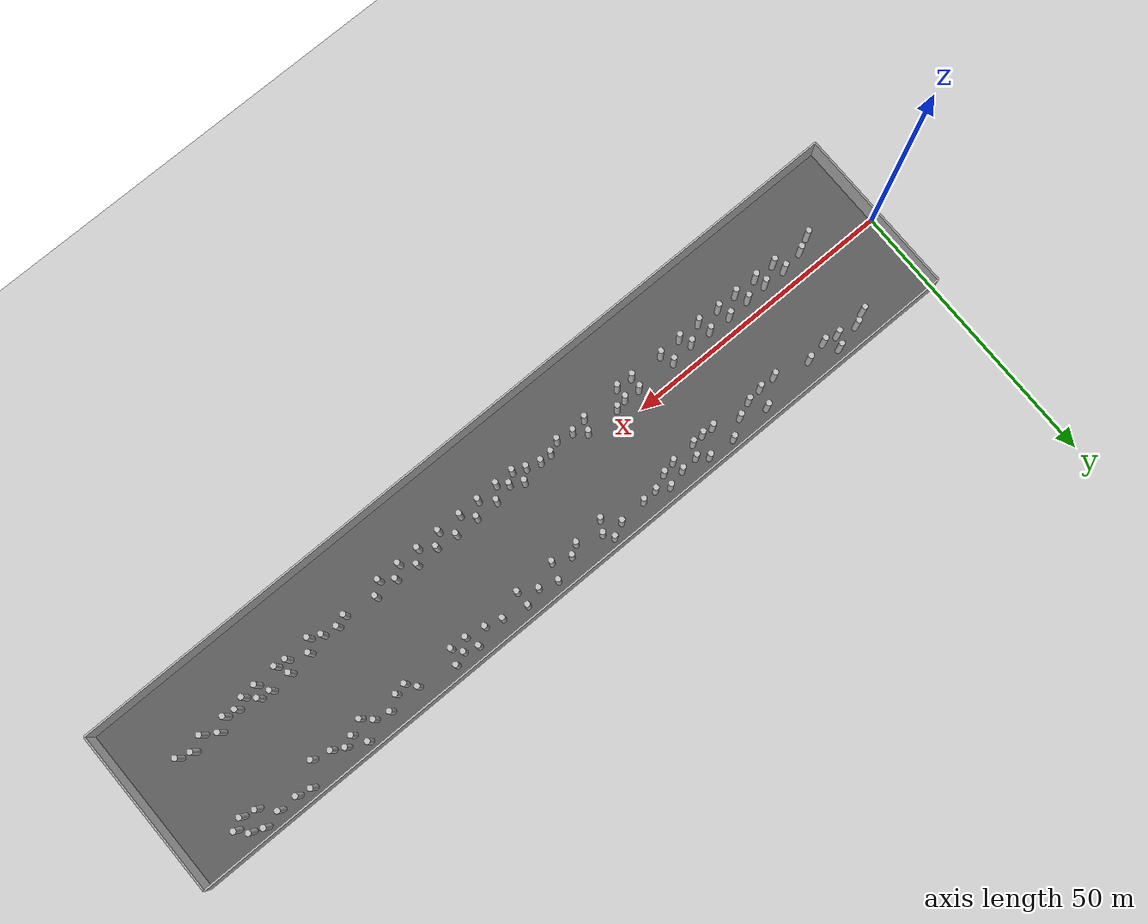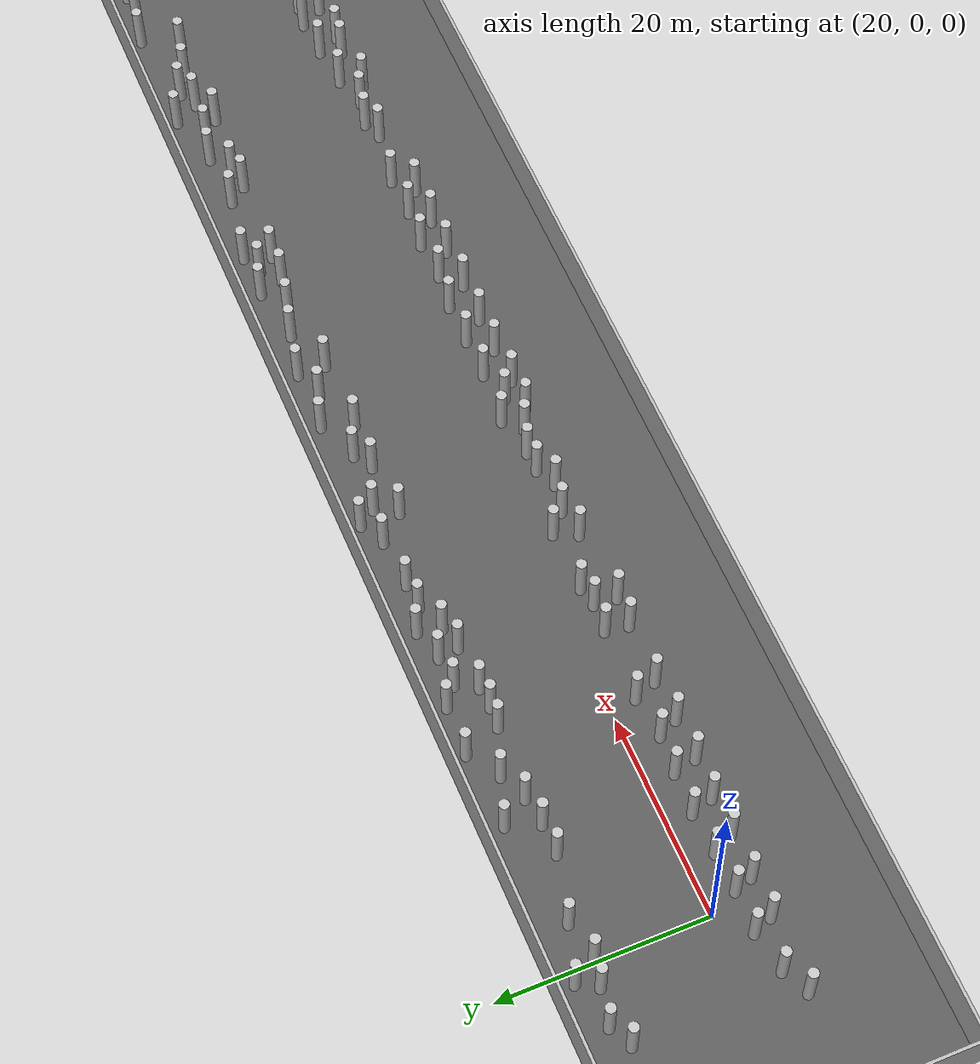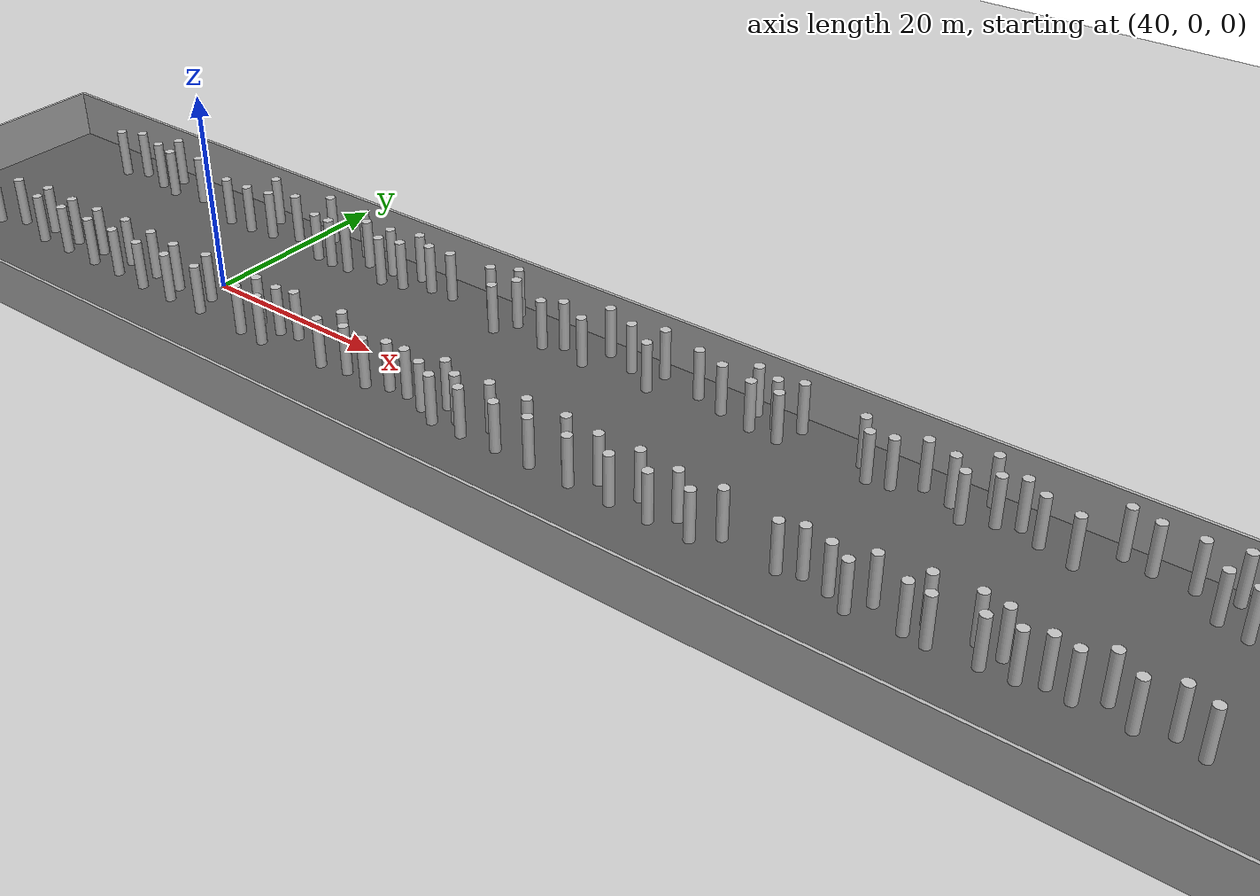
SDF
<?xml version="1.0" ?>
<sdf version="1.5">
  <world name="default">
    <plugin name="gazebo_ros_state" filename="libgazebo_ros_state.so">
      <ros>
        <namespace>/gazebo</namespace>
      </ros>
      <update_rate>20.0</update_rate>
    </plugin>

    <include><uri>model://sun</uri></include>
    <include><uri>model://ground_plane</uri></include>

    <model name="corridor_floor">
      <static>true</static>
      <pose>75 0 0.01 0 0 0</pose>
      <link name="link">
        <collision name="collision">
          <geometry><box><size>150 30 0.02</size></box></geometry>
        </collision>
        <visual name="visual">
          <geometry><box><size>150 30 0.02</size></box></geometry>
          <material>
            <ambient>0.25 0.25 0.25 1</ambient>
            <diffuse>0.35 0.35 0.35 1</diffuse>
          </material>
        </visual>
      </link>
    </model>

    <physics name="default_physics" default="0" type="ode">
      <gravity>0 0 -9.8066</gravity>
      <ode>
        <solver>
          <type>quick</type>
          <iters>10</iters>
          <sor>1.3</sor>
          <use_dynamic_moi_rescaling>0</use_dynamic_moi_rescaling>
        </solver>
        <constraints>
          <cfm>0</cfm>
          <erp>0.2</erp>
          <contact_max_correcting_vel>100</contact_max_correcting_vel>
          <contact_surface_layer>0.001</contact_surface_layer>
        </constraints>
      </ode>
      <max_step_size>0.004</max_step_size>
      <real_time_factor>1</real_time_factor>
      <real_time_update_rate>250</real_time_update_rate>
      <magnetic_field>6.0e-6 2.3e-5 -4.2e-5</magnetic_field>
    </physics>

    <model name="left_wall">
      <static>true</static>
      <pose>75 15.15 2.5 0 0 0</pose>
      <link name="link">
        <collision name="collision">
          <geometry><box><size>150 0.3 5</size></box></geometry>
        </collision>
        <visual name="visual">
          <geometry><box><size>150 0.3 5</size></box></geometry>
        </visual>
      </link>
    </model>

    <model name="right_wall">
      <static>true</static>
      <pose>75 -15.15 2.5 0 0 0</pose>
      <link name="link">
        <collision name="collision">
          <geometry><box><size>150 0.3 5</size></box></geometry>
        </collision>
        <visual name="visual">
          <geometry><box><size>150 0.3 5</size></box></geometry>
        </visual>
      </link>
    </model>

    <model name="start_wall">
      <static>true</static>
      <pose>0 0 2.5 0 0 0</pose>
      <link name="link">
        <collision name="collision">
          <geometry><box><size>0.3 30.3 5</size></box></geometry>
        </collision>
        <visual name="visual">
          <geometry><box><size>0.3 30.3 5</size></box></geometry>
        </visual>
      </link>
    </model>

    <model name="end_wall">
      <static>true</static>
      <pose>150 0 2.5 0 0 0</pose>
      <link name="link">
        <collision name="collision">
          <geometry><box><size>0.3 30.3 5</size></box></geometry>
        </collision>
        <visual name="visual">
          <geometry><box><size>0.3 30.3 5</size></box></geometry>
        </visual>
      </link>
    </model>

    <include><name>cylinder_000</name><uri>model://cylinder_r05_h5</uri><pose>17.895 -4.537 2.5 0 0 0</pose></include>
    <include><name>cylinder_001</name><uri>model://cylinder_r05_h5</uri><pose>17.145 -2.654 2.5 0 0 0</pose></include>
    <include><name>cylinder_002</name><uri>model://cylinder_r05_h5</uri><pose>21.822 -4.557 2.5 0 0 0</pose></include>
    <include><name>cylinder_003</name><uri>model://cylinder_r05_h5</uri><pose>21.213 -2.785 2.5 0 0 0</pose></include>
    <include><name>cylinder_004</name><uri>model://cylinder_r05_h5</uri><pose>26.027 -4.610 2.5 0 0 0</pose></include>
    <include><name>cylinder_005</name><uri>model://cylinder_r05_h5</uri><pose>25.065 -2.659 2.5 0 0 0</pose></include>
    <include><name>cylinder_006</name><uri>model://cylinder_r05_h5</uri><pose>29.804 -4.567 2.5 0 0 0</pose></include>
    <include><name>cylinder_007</name><uri>model://cylinder_r05_h5</uri><pose>29.143 -2.410 2.5 0 0 0</pose></include>
    <include><name>cylinder_008</name><uri>model://cylinder_r05_h5</uri><pose>33.780 -4.840 2.5 0 0 0</pose></include>
    <include><name>cylinder_009</name><uri>model://cylinder_r05_h5</uri><pose>33.205 -2.584 2.5 0 0 0</pose></include>
    <include><name>cylinder_010</name><uri>model://cylinder_r05_h5</uri><pose>37.872 -4.824 2.5 0 0 0</pose></include>
    <include><name>cylinder_011</name><uri>model://cylinder_r05_h5</uri><pose>36.935 -2.910 2.5 0 0 0</pose></include>
    <include><name>cylinder_012</name><uri>model://cylinder_r05_h5</uri><pose>41.989 -4.655 2.5 0 0 0</pose></include>
    <include><name>cylinder_013</name><uri>model://cylinder_r05_h5</uri><pose>41.111 -2.421 2.5 0 0 0</pose></include>
    <include><name>cylinder_014</name><uri>model://cylinder_r05_h5</uri><pose>70.580 -4.267 2.5 0 0 0</pose></include>
    <include><name>cylinder_015</name><uri>model://cylinder_r05_h5</uri><pose>53.136 -2.348 2.5 0 0 0</pose></include>
    <include><name>cylinder_016</name><uri>model://cylinder_r05_h5</uri><pose>61.132 -3.962 2.5 0 0 0</pose></include>
    <include><name>cylinder_017</name><uri>model://cylinder_r05_h5</uri><pose>48.306 -2.595 2.5 0 0 0</pose></include>
    <include><name>cylinder_018</name><uri>model://cylinder_r05_h5</uri><pose>59.259 -2.286 2.5 0 0 0</pose></include>
    <include><name>cylinder_019</name><uri>model://cylinder_r05_h5</uri><pose>63.992 -4.539 2.5 0 0 0</pose></include>
    <include><name>cylinder_020</name><uri>model://cylinder_r05_h5</uri><pose>47.991 -4.861 2.5 0 0 0</pose></include>
    <include><name>cylinder_021</name><uri>model://cylinder_r05_h5</uri><pose>66.068 -3.572 2.5 0 0 0</pose></include>
    <include><name>cylinder_022</name><uri>model://cylinder_r05_h5</uri><pose>68.156 -3.505 2.5 0 0 0</pose></include>
    <include><name>cylinder_023</name><uri>model://cylinder_r05_h5</uri><pose>72.230 -2.656 2.5 0 0 0</pose></include>
    <include><name>cylinder_024</name><uri>model://cylinder_r05_h5</uri><pose>74.393 -3.881 2.5 0 0 0</pose></include>
    <include><name>cylinder_025</name><uri>model://cylinder_r05_h5</uri><pose>50.962 -4.999 2.5 0 0 0</pose></include>
    <include><name>cylinder_026</name><uri>model://cylinder_r05_h5</uri><pose>72.676 -5.254 2.5 0 0 0</pose></include>
    <include><name>cylinder_027</name><uri>model://cylinder_r05_h5</uri><pose>51.145 -2.781 2.5 0 0 0</pose></include>
    <include><name>cylinder_028</name><uri>model://cylinder_r05_h5</uri><pose>58.283 -4.475 2.5 0 0 0</pose></include>
    <include><name>cylinder_029</name><uri>model://cylinder_r05_h5</uri><pose>77.649 -3.089 2.5 0 0 0</pose></include>
    <include><name>cylinder_030</name><uri>model://cylinder_r05_h5</uri><pose>76.008 -5.255 2.5 0 0 0</pose></include>
    <include><name>cylinder_031</name><uri>model://cylinder_r05_h5</uri><pose>81.764 -3.055 2.5 0 0 0</pose></include>
    <include><name>cylinder_032</name><uri>model://cylinder_r05_h5</uri><pose>79.832 -5.113 2.5 0 0 0</pose></include>
    <include><name>cylinder_033</name><uri>model://cylinder_r05_h5</uri><pose>85.974 -3.042 2.5 0 0 0</pose></include>
    <include><name>cylinder_034</name><uri>model://cylinder_r05_h5</uri><pose>83.568 -5.138 2.5 0 0 0</pose></include>
    <include><name>cylinder_035</name><uri>model://cylinder_r05_h5</uri><pose>89.677 -3.476 2.5 0 0 0</pose></include>
    <include><name>cylinder_036</name><uri>model://cylinder_r05_h5</uri><pose>87.816 -5.248 2.5 0 0 0</pose></include>
    <include><name>cylinder_037</name><uri>model://cylinder_r05_h5</uri><pose>93.733 -3.255 2.5 0 0 0</pose></include>
    <include><name>cylinder_038</name><uri>model://cylinder_r05_h5</uri><pose>92.085 -5.245 2.5 0 0 0</pose></include>
    <include><name>cylinder_039</name><uri>model://cylinder_r05_h5</uri><pose>97.762 -3.622 2.5 0 0 0</pose></include>
    <include><name>cylinder_040</name><uri>model://cylinder_r05_h5</uri><pose>95.946 -5.238 2.5 0 0 0</pose></include>
    <include><name>cylinder_041</name><uri>model://cylinder_r05_h5</uri><pose>101.938 -3.468 2.5 0 0 0</pose></include>
    <include><name>cylinder_042</name><uri>model://cylinder_r05_h5</uri><pose>99.994 -5.200 2.5 0 0 0</pose></include>
    <include><name>cylinder_043</name><uri>model://cylinder_r05_h5</uri><pose>127.663 -4.450 2.5 0 0 0</pose></include>
    <include><name>cylinder_044</name><uri>model://cylinder_r05_h5</uri><pose>112.106 -4.182 2.5 0 0 0</pose></include>
    <include><name>cylinder_045</name><uri>model://cylinder_r05_h5</uri><pose>109.509 -3.647 2.5 0 0 0</pose></include>
    <include><name>cylinder_046</name><uri>model://cylinder_r05_h5</uri><pose>119.729 -2.760 2.5 0 0 0</pose></include>
    <include><name>cylinder_047</name><uri>model://cylinder_r05_h5</uri><pose>123.668 -2.477 2.5 0 0 0</pose></include>
    <include><name>cylinder_048</name><uri>model://cylinder_r05_h5</uri><pose>118.810 -4.735 2.5 0 0 0</pose></include>
    <include><name>cylinder_049</name><uri>model://cylinder_r05_h5</uri><pose>107.553 -4.378 2.5 0 0 0</pose></include>
    <include><name>cylinder_050</name><uri>model://cylinder_r05_h5</uri><pose>115.461 -3.237 2.5 0 0 0</pose></include>
    <include><name>cylinder_051</name><uri>model://cylinder_r05_h5</uri><pose>124.953 -4.686 2.5 0 0 0</pose></include>
    <include><name>cylinder_052</name><uri>model://cylinder_r05_h5</uri><pose>133.822 -2.524 2.5 0 0 0</pose></include>
    <include><name>cylinder_053</name><uri>model://cylinder_r05_h5</uri><pose>131.721 -3.971 2.5 0 0 0</pose></include>
    <include><name>cylinder_054</name><uri>model://cylinder_r05_h5</uri><pose>120.821 -4.967 2.5 0 0 0</pose></include>
    <include><name>cylinder_055</name><uri>model://cylinder_r05_h5</uri><pose>125.908 -2.806 2.5 0 0 0</pose></include>
    <include><name>cylinder_056</name><uri>model://cylinder_r05_h5</uri><pose>114.126 -5.206 2.5 0 0 0</pose></include>
    <include><name>cylinder_057</name><uri>model://cylinder_r05_h5</uri><pose>129.617 -3.632 2.5 0 0 0</pose></include>
    <include><name>cylinder_058</name><uri>model://cylinder_r05_h5</uri><pose>13.149 -3.324 2.5 0 0 0</pose></include>
    <include><name>cylinder_059</name><uri>model://cylinder_r05_h5</uri><pose>10.572 -4.552 2.5 0 0 0</pose></include>
    <include><name>cylinder_060</name><uri>model://cylinder_r05_h5</uri><pose>136.252 -4.051 2.5 0 0 0</pose></include>
    <include><name>cylinder_061</name><uri>model://cylinder_r05_h5</uri><pose>141.291 -3.615 2.5 0 0 0</pose></include>
    <include><name>cylinder_062</name><uri>model://cylinder_r05_h5</uri><pose>138.860 -2.832 2.5 0 0 0</pose></include>
    <include><name>cylinder_063</name><uri>model://cylinder_r05_h5</uri><pose>54.206 10.651 2.5 0 0 0</pose></include>
    <include><name>cylinder_064</name><uri>model://cylinder_r05_h5</uri><pose>137.287 13.494 2.5 0 0 0</pose></include>
    <include><name>cylinder_065</name><uri>model://cylinder_r05_h5</uri><pose>118.284 11.068 2.5 0 0 0</pose></include>
    <include><name>cylinder_066</name><uri>model://cylinder_r05_h5</uri><pose>91.735 11.239 2.5 0 0 0</pose></include>
    <include><name>cylinder_067</name><uri>model://cylinder_r05_h5</uri><pose>51.570 12.068 2.5 0 0 0</pose></include>
    <include><name>cylinder_068</name><uri>model://cylinder_r05_h5</uri><pose>128.035 13.397 2.5 0 0 0</pose></include>
    <include><name>cylinder_069</name><uri>model://cylinder_r05_h5</uri><pose>17.741 11.249 2.5 0 0 0</pose></include>
    <include><name>cylinder_070</name><uri>model://cylinder_r05_h5</uri><pose>38.804 11.452 2.5 0 0 0</pose></include>
    <include><name>cylinder_071</name><uri>model://cylinder_r05_h5</uri><pose>105.662 11.817 2.5 0 0 0</pose></include>
    <include><name>cylinder_072</name><uri>model://cylinder_r05_h5</uri><pose>81.400 11.994 2.5 0 0 0</pose></include>
    <include><name>cylinder_073</name><uri>model://cylinder_r05_h5</uri><pose>122.174 10.801 2.5 0 0 0</pose></include>
    <include><name>cylinder_074</name><uri>model://cylinder_r05_h5</uri><pose>24.015 11.463 2.5 0 0 0</pose></include>
    <include><name>cylinder_075</name><uri>model://cylinder_r05_h5</uri><pose>56.978 11.818 2.5 0 0 0</pose></include>
    <include><name>cylinder_076</name><uri>model://cylinder_r05_h5</uri><pose>48.530 11.878 2.5 0 0 0</pose></include>
    <include><name>cylinder_077</name><uri>model://cylinder_r05_h5</uri><pose>43.278 9.840 2.5 0 0 0</pose></include>
    <include><name>cylinder_078</name><uri>model://cylinder_r05_h5</uri><pose>136.660 10.433 2.5 0 0 0</pose></include>
    <include><name>cylinder_079</name><uri>model://cylinder_r05_h5</uri><pose>72.273 10.272 2.5 0 0 0</pose></include>
    <include><name>cylinder_080</name><uri>model://cylinder_r05_h5</uri><pose>94.390 12.977 2.5 0 0 0</pose></include>
    <include><name>cylinder_081</name><uri>model://cylinder_r05_h5</uri><pose>20.285 10.756 2.5 0 0 0</pose></include>
    <include><name>cylinder_082</name><uri>model://cylinder_r05_h5</uri><pose>74.074 11.393 2.5 0 0 0</pose></include>
    <include><name>cylinder_083</name><uri>model://cylinder_r05_h5</uri><pose>18.857 13.123 2.5 0 0 0</pose></include>
    <include><name>cylinder_084</name><uri>model://cylinder_r05_h5</uri><pose>77.138 10.104 2.5 0 0 0</pose></include>
    <include><name>cylinder_085</name><uri>model://cylinder_r05_h5</uri><pose>68.017 11.834 2.5 0 0 0</pose></include>
    <include><name>cylinder_086</name><uri>model://cylinder_r05_h5</uri><pose>139.530 12.623 2.5 0 0 0</pose></include>
    <include><name>cylinder_087</name><uri>model://cylinder_r05_h5</uri><pose>106.992 10.127 2.5 0 0 0</pose></include>
    <include><name>cylinder_088</name><uri>model://cylinder_r05_h5</uri><pose>114.121 11.388 2.5 0 0 0</pose></include>
    <include><name>cylinder_089</name><uri>model://cylinder_r05_h5</uri><pose>46.775 13.237 2.5 0 0 0</pose></include>
    <include><name>cylinder_090</name><uri>model://cylinder_r05_h5</uri><pose>116.892 13.471 2.5 0 0 0</pose></include>
    <include><name>cylinder_091</name><uri>model://cylinder_r05_h5</uri><pose>141.121 10.946 2.5 0 0 0</pose></include>
    <include><name>cylinder_092</name><uri>model://cylinder_r05_h5</uri><pose>36.038 10.330 2.5 0 0 0</pose></include>
    <include><name>cylinder_093</name><uri>model://cylinder_r05_h5</uri><pose>66.900 13.497 2.5 0 0 0</pose></include>
    <include><name>cylinder_094</name><uri>model://cylinder_r05_h5</uri><pose>64.428 12.258 2.5 0 0 0</pose></include>
    <include><name>cylinder_095</name><uri>model://cylinder_r05_h5</uri><pose>59.584 11.948 2.5 0 0 0</pose></include>
    <include><name>cylinder_096</name><uri>model://cylinder_r05_h5</uri><pose>33.244 9.920 2.5 0 0 0</pose></include>
    <include><name>cylinder_097</name><uri>model://cylinder_r05_h5</uri><pose>96.818 12.176 2.5 0 0 0</pose></include>
    <include><name>cylinder_098</name><uri>model://cylinder_r05_h5</uri><pose>54.714 12.899 2.5 0 0 0</pose></include>
    <include><name>cylinder_099</name><uri>model://cylinder_r05_h5</uri><pose>125.397 10.005 2.5 0 0 0</pose></include>
    <include><name>cylinder_100</name><uri>model://cylinder_r05_h5</uri><pose>111.370 12.026 2.5 0 0 0</pose></include>
    <include><name>cylinder_101</name><uri>model://cylinder_r05_h5</uri><pose>66.772 9.741 2.5 0 0 0</pose></include>
    <include><name>cylinder_102</name><uri>model://cylinder_r05_h5</uri><pose>12.050 10.936 2.5 0 0 0</pose></include>
    <include><name>cylinder_103</name><uri>model://cylinder_r05_h5</uri><pose>14.266 12.002 2.5 0 0 0</pose></include>
    <include><name>cylinder_104</name><uri>model://cylinder_r05_h5</uri><pose>30.223 9.855 2.5 0 0 0</pose></include>
    <include><name>cylinder_105</name><uri>model://cylinder_r05_h5</uri><pose>84.425 12.983 2.5 0 0 0</pose></include>
    <include><name>cylinder_106</name><uri>model://cylinder_r05_h5</uri><pose>34.336 12.989 2.5 0 0 0</pose></include>
    <include><name>cylinder_107</name><uri>model://cylinder_r05_h5</uri><pose>84.370 10.253 2.5 0 0 0</pose></include>
    <include><name>cylinder_108</name><uri>model://cylinder_r05_h5</uri><pose>109.045 10.539 2.5 0 0 0</pose></include>
    <include><name>cylinder_109</name><uri>model://cylinder_r05_h5</uri><pose>95.131 10.584 2.5 0 0 0</pose></include>
    <include><name>cylinder_110</name><uri>model://cylinder_r05_h5</uri><pose>139.204 9.848 2.5 0 0 0</pose></include>
    <include><name>cylinder_111</name><uri>model://cylinder_r05_h5</uri><pose>98.961 13.054 2.5 0 0 0</pose></include>
    <include><name>cylinder_112</name><uri>model://cylinder_r05_h5</uri><pose>41.879 13.447 2.5 0 0 0</pose></include>
    <include><name>cylinder_113</name><uri>model://cylinder_r05_h5</uri><pose>47.420 9.856 2.5 0 0 0</pose></include>
    <include><name>cylinder_114</name><uri>model://cylinder_r05_h5</uri><pose>78.215 13.041 2.5 0 0 0</pose></include>
    <include><name>cylinder_115</name><uri>model://cylinder_r05_h5</uri><pose>88.788 12.041 2.5 0 0 0</pose></include>
    <include><name>cylinder_116</name><uri>model://cylinder_r05_h5</uri><pose>120.131 11.939 2.5 0 0 0</pose></include>
    <include><name>cylinder_117</name><uri>model://cylinder_r05_h5</uri><pose>130.582 12.876 2.5 0 0 0</pose></include>
    <include><name>cylinder_118</name><uri>model://cylinder_r05_h5</uri><pose>115.745 9.865 2.5 0 0 0</pose></include>
    <include><name>cylinder_119</name><uri>model://cylinder_r05_h5</uri><pose>98.020 10.505 2.5 0 0 0</pose></include>
    <include><name>cylinder_120</name><uri>model://cylinder_r05_h5</uri><pose>51.857 10.086 2.5 0 0 0</pose></include>
    <include><name>cylinder_121</name><uri>model://cylinder_r05_h5</uri><pose>45.322 9.713 2.5 0 0 0</pose></include>
    <include><name>cylinder_122</name><uri>model://cylinder_r05_h5</uri><pose>134.045 12.844 2.5 0 0 0</pose></include>

  </world>
</sdf>

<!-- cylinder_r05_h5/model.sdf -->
<sdf version="1.5">
  <model name="cylinder_r05_h5">
    <static>true</static>
    <link name="link">
      <collision name="collision">
        <geometry>
          <cylinder>
            <radius>0.5</radius>
            <length>5</length>
          </cylinder>
        </geometry>
      </collision>
      <visual name="visual">
        <geometry>
          <cylinder>
            <radius>0.5</radius>
            <length>5</length>
          </cylinder>
        </geometry>
        <material>
          <ambient>0.5 0.5 0.5 1</ambient>
          <diffuse>0.75 0.75 0.75 1</diffuse>
        </material>
      </visual>
    </link>
  </model>
</sdf>
